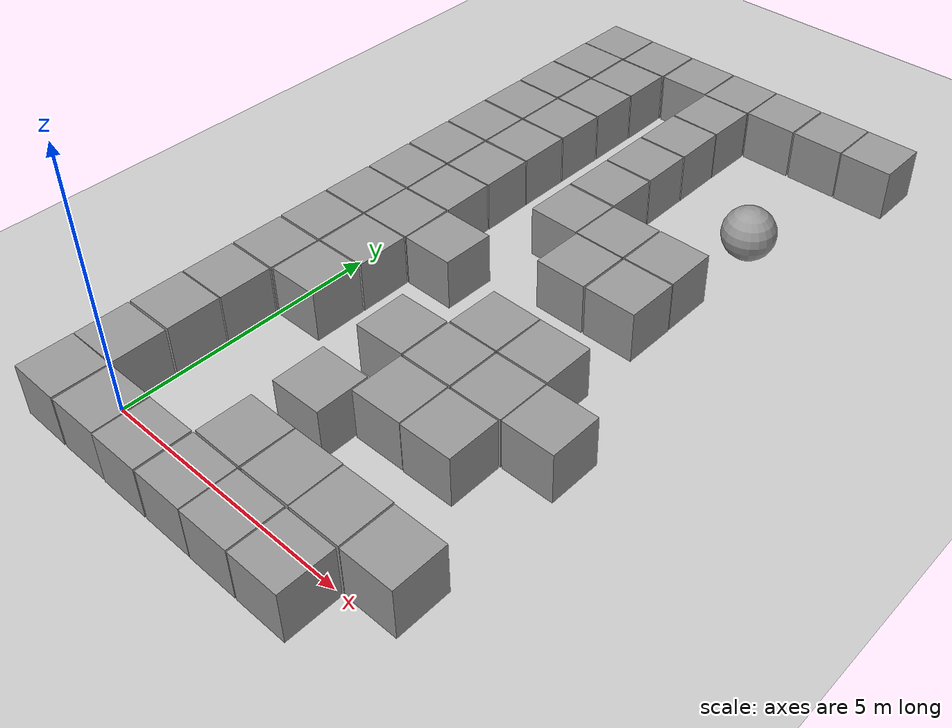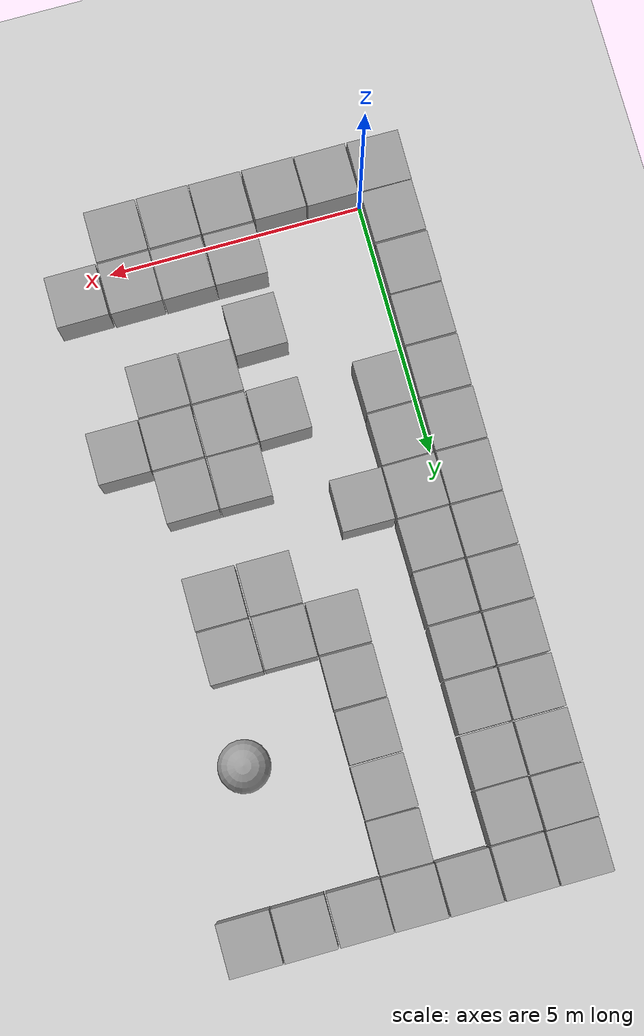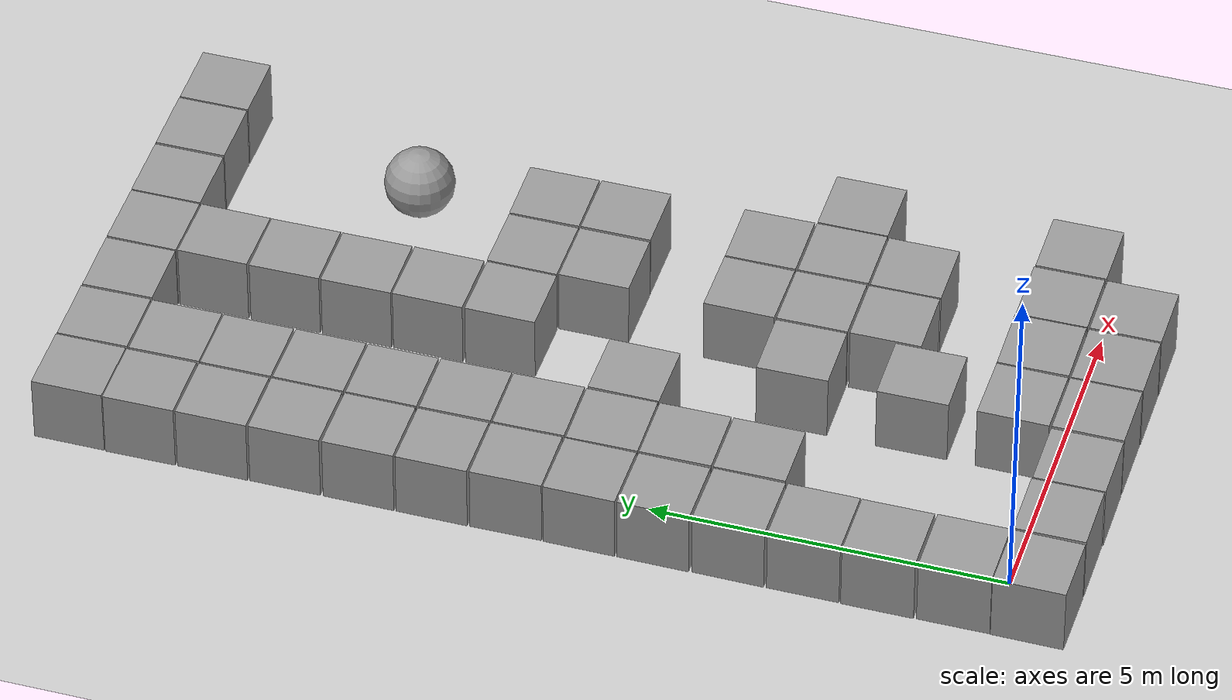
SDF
<sdf version="1.6">
 <world name="hub_mix">
  <include><uri>model://ground_plane</uri></include>
  <include><uri>model://sun</uri></include>
  <model name="unit_box_0">
   <pose>-0.5049 -0.4946 0.5 0 0 -0.00733</pose>
   <link name="link">
    <inertial>
     <mass>1</mass>
     <inertia>
      <ixx>0.166667</ixx>
      <ixy>0</ixy>
      <ixz>0</ixz>
      <iyy>0.166667</iyy>
      <iyz>0</iyz>
      <izz>0.166667</izz>
     </inertia>
    </inertial>
    <collision name="collision"><geometry><box><size>1 1 1</size></box></geometry></collision>
    <visual name="visual">
     <geometry><box><size>1 1 1</size></box></geometry>
     <material>
      <script><uri>file://media/materials/scripts/gazebo.material</uri><name>Gazebo/Grey</name></script>
     </material>
    </visual>
   </link>
  </model>
  <model name="unit_box_1">
   <pose>0.5329 -0.4959 0.5 0 0 0.00518</pose>
   <link name="link">
    <inertial>
     <mass>1</mass>
     <inertia>
      <ixx>0.166667</ixx>
      <ixy>0</ixy>
      <ixz>0</ixz>
      <iyy>0.166667</iyy>
      <iyz>0</iyz>
      <izz>0.166667</izz>
     </inertia>
    </inertial>
    <collision name="collision"><geometry><box><size>1 1 1</size></box></geometry></collision>
    <visual name="visual">
     <geometry><box><size>1 1 1</size></box></geometry>
     <material>
      <script><uri>file://media/materials/scripts/gazebo.material</uri><name>Gazebo/Grey</name></script>
     </material>
    </visual>
   </link>
  </model>
  <model name="unit_box_2">
   <pose>1.5576 -0.5018 0.5 0 0 0.00465</pose>
   <link name="link">
    <inertial>
     <mass>1</mass>
     <inertia>
      <ixx>0.166667</ixx>
      <ixy>0</ixy>
      <ixz>0</ixz>
      <iyy>0.166667</iyy>
      <iyz>0</iyz>
      <izz>0.166667</izz>
     </inertia>
    </inertial>
    <collision name="collision"><geometry><box><size>1 1 1</size></box></geometry></collision>
    <visual name="visual">
     <geometry><box><size>1 1 1</size></box></geometry>
     <material>
      <script><uri>file://media/materials/scripts/gazebo.material</uri><name>Gazebo/Grey</name></script>
     </material>
    </visual>
   </link>
  </model>
  <model name="unit_box_3">
   <pose>2.5956 -0.4980 0.5 0 0 0.00085</pose>
   <link name="link">
    <inertial>
     <mass>1</mass>
     <inertia>
      <ixx>0.166667</ixx>
      <ixy>0</ixy>
      <ixz>0</ixz>
      <iyy>0.166667</iyy>
      <iyz>0</iyz>
      <izz>0.166667</izz>
     </inertia>
    </inertial>
    <collision name="collision"><geometry><box><size>1 1 1</size></box></geometry></collision>
    <visual name="visual">
     <geometry><box><size>1 1 1</size></box></geometry>
     <material>
      <script><uri>file://media/materials/scripts/gazebo.material</uri><name>Gazebo/Grey</name></script>
     </material>
    </visual>
   </link>
  </model>
  <model name="unit_box_4">
   <pose>3.6187 -0.5011 0.5 0 0 0.00459</pose>
   <link name="link">
    <inertial>
     <mass>1</mass>
     <inertia>
      <ixx>0.166667</ixx>
      <ixy>0</ixy>
      <ixz>0</ixz>
      <iyy>0.166667</iyy>
      <iyz>0</iyz>
      <izz>0.166667</izz>
     </inertia>
    </inertial>
    <collision name="collision"><geometry><box><size>1 1 1</size></box></geometry></collision>
    <visual name="visual">
     <geometry><box><size>1 1 1</size></box></geometry>
     <material>
      <script><uri>file://media/materials/scripts/gazebo.material</uri><name>Gazebo/Grey</name></script>
     </material>
    </visual>
   </link>
  </model>
  <model name="unit_box_5">
   <pose>4.6491 -0.4996 0.5 0 0 0.00274</pose>
   <link name="link">
    <inertial>
     <mass>1</mass>
     <inertia>
      <ixx>0.166667</ixx>
      <ixy>0</ixy>
      <ixz>0</ixz>
      <iyy>0.166667</iyy>
      <iyz>0</iyz>
      <izz>0.166667</izz>
     </inertia>
    </inertial>
    <collision name="collision"><geometry><box><size>1 1 1</size></box></geometry></collision>
    <visual name="visual">
     <geometry><box><size>1 1 1</size></box></geometry>
     <material>
      <script><uri>file://media/materials/scripts/gazebo.material</uri><name>Gazebo/Grey</name></script>
     </material>
    </visual>
   </link>
  </model>
  <model name="unit_box_15">
   <pose>-0.4976 12.8890 0.5 0 0 -0.00064</pose>
   <link name="link">
    <inertial>
     <mass>1</mass>
     <inertia>
      <ixx>0.166667</ixx>
      <ixy>0</ixy>
      <ixz>0</ixz>
      <iyy>0.166667</iyy>
      <iyz>0</iyz>
      <izz>0.166667</izz>
     </inertia>
    </inertial>
    <collision name="collision"><geometry><box><size>1 1 1</size></box></geometry></collision>
    <visual name="visual">
     <geometry><box><size>1 1 1</size></box></geometry>
     <material>
      <script><uri>file://media/materials/scripts/gazebo.material</uri><name>Gazebo/Grey</name></script>
     </material>
    </visual>
   </link>
  </model>
  <model name="unit_box_16">
   <pose>0.5312 12.8853 0.5 0 0 0.00665</pose>
   <link name="link">
    <inertial>
     <mass>1</mass>
     <inertia>
      <ixx>0.166667</ixx>
      <ixy>0</ixy>
      <ixz>0</ixz>
      <iyy>0.166667</iyy>
      <iyz>0</iyz>
      <izz>0.166667</izz>
     </inertia>
    </inertial>
    <collision name="collision"><geometry><box><size>1 1 1</size></box></geometry></collision>
    <visual name="visual">
     <geometry><box><size>1 1 1</size></box></geometry>
     <material>
      <script><uri>file://media/materials/scripts/gazebo.material</uri><name>Gazebo/Grey</name></script>
     </material>
    </visual>
   </link>
  </model>
  <model name="unit_box_17">
   <pose>1.5647 12.8871 0.5 0 0 0.00662</pose>
   <link name="link">
    <inertial>
     <mass>1</mass>
     <inertia>
      <ixx>0.166667</ixx>
      <ixy>0</ixy>
      <ixz>0</ixz>
      <iyy>0.166667</iyy>
      <iyz>0</iyz>
      <izz>0.166667</izz>
     </inertia>
    </inertial>
    <collision name="collision"><geometry><box><size>1 1 1</size></box></geometry></collision>
    <visual name="visual">
     <geometry><box><size>1 1 1</size></box></geometry>
     <material>
      <script><uri>file://media/materials/scripts/gazebo.material</uri><name>Gazebo/Grey</name></script>
     </material>
    </visual>
   </link>
  </model>
  <model name="unit_box_18">
   <pose>2.5924 12.8876 0.5 0 0 -0.00482</pose>
   <link name="link">
    <inertial>
     <mass>1</mass>
     <inertia>
      <ixx>0.166667</ixx>
      <ixy>0</ixy>
      <ixz>0</ixz>
      <iyy>0.166667</iyy>
      <iyz>0</iyz>
      <izz>0.166667</izz>
     </inertia>
    </inertial>
    <collision name="collision"><geometry><box><size>1 1 1</size></box></geometry></collision>
    <visual name="visual">
     <geometry><box><size>1 1 1</size></box></geometry>
     <material>
      <script><uri>file://media/materials/scripts/gazebo.material</uri><name>Gazebo/Grey</name></script>
     </material>
    </visual>
   </link>
  </model>
  <model name="unit_box_19">
   <pose>3.6150 12.8890 0.5 0 0 -0.00102</pose>
   <link name="link">
    <inertial>
     <mass>1</mass>
     <inertia>
      <ixx>0.166667</ixx>
      <ixy>0</ixy>
      <ixz>0</ixz>
      <iyy>0.166667</iyy>
      <iyz>0</iyz>
      <izz>0.166667</izz>
     </inertia>
    </inertial>
    <collision name="collision"><geometry><box><size>1 1 1</size></box></geometry></collision>
    <visual name="visual">
     <geometry><box><size>1 1 1</size></box></geometry>
     <material>
      <script><uri>file://media/materials/scripts/gazebo.material</uri><name>Gazebo/Grey</name></script>
     </material>
    </visual>
   </link>
  </model>
  <model name="unit_box_20">
   <pose>4.6498 12.8898 0.5 0 0 0.00102</pose>
   <link name="link">
    <inertial>
     <mass>1</mass>
     <inertia>
      <ixx>0.166667</ixx>
      <ixy>0</ixy>
      <ixz>0</ixz>
      <iyy>0.166667</iyy>
      <iyz>0</iyz>
      <izz>0.166667</izz>
     </inertia>
    </inertial>
    <collision name="collision"><geometry><box><size>1 1 1</size></box></geometry></collision>
    <visual name="visual">
     <geometry><box><size>1 1 1</size></box></geometry>
     <material>
      <script><uri>file://media/materials/scripts/gazebo.material</uri><name>Gazebo/Grey</name></script>
     </material>
    </visual>
   </link>
  </model>
  <model name="unit_box_21">
   <pose>5.6755 12.8867 0.5 0 0 0.00124</pose>
   <link name="link">
    <inertial>
     <mass>1</mass>
     <inertia>
      <ixx>0.166667</ixx>
      <ixy>0</ixy>
      <ixz>0</ixz>
      <iyy>0.166667</iyy>
      <iyz>0</iyz>
      <izz>0.166667</izz>
     </inertia>
    </inertial>
    <collision name="collision"><geometry><box><size>1 1 1</size></box></geometry></collision>
    <visual name="visual">
     <geometry><box><size>1 1 1</size></box></geometry>
     <material>
      <script><uri>file://media/materials/scripts/gazebo.material</uri><name>Gazebo/Grey</name></script>
     </material>
    </visual>
   </link>
  </model>
  <model name="unit_box_30">
   <pose>-0.4976 0.5193 0.5 0 0 0.00308</pose>
   <link name="link">
    <inertial>
     <mass>1</mass>
     <inertia>
      <ixx>0.166667</ixx>
      <ixy>0</ixy>
      <ixz>0</ixz>
      <iyy>0.166667</iyy>
      <iyz>0</iyz>
      <izz>0.166667</izz>
     </inertia>
    </inertial>
    <collision name="collision"><geometry><box><size>1 1 1</size></box></geometry></collision>
    <visual name="visual">
     <geometry><box><size>1 1 1</size></box></geometry>
     <material>
      <script><uri>file://media/materials/scripts/gazebo.material</uri><name>Gazebo/Grey</name></script>
     </material>
    </visual>
   </link>
  </model>
  <model name="unit_box_31">
   <pose>-0.5059 1.5576 0.5 0 0 0.00122</pose>
   <link name="link">
    <inertial>
     <mass>1</mass>
     <inertia>
      <ixx>0.166667</ixx>
      <ixy>0</ixy>
      <ixz>0</ixz>
      <iyy>0.166667</iyy>
      <iyz>0</iyz>
      <izz>0.166667</izz>
     </inertia>
    </inertial>
    <collision name="collision"><geometry><box><size>1 1 1</size></box></geometry></collision>
    <visual name="visual">
     <geometry><box><size>1 1 1</size></box></geometry>
     <material>
      <script><uri>file://media/materials/scripts/gazebo.material</uri><name>Gazebo/Grey</name></script>
     </material>
    </visual>
   </link>
  </model>
  <model name="unit_box_32">
   <pose>-0.4989 2.5807 0.5 0 0 -0.00042</pose>
   <link name="link">
    <inertial>
     <mass>1</mass>
     <inertia>
      <ixx>0.166667</ixx>
      <ixy>0</ixy>
      <ixz>0</ixz>
      <iyy>0.166667</iyy>
      <iyz>0</iyz>
      <izz>0.166667</izz>
     </inertia>
    </inertial>
    <collision name="collision"><geometry><box><size>1 1 1</size></box></geometry></collision>
    <visual name="visual">
     <geometry><box><size>1 1 1</size></box></geometry>
     <material>
      <script><uri>file://media/materials/scripts/gazebo.material</uri><name>Gazebo/Grey</name></script>
     </material>
    </visual>
   </link>
  </model>
  <model name="unit_box_33">
   <pose>-0.4983 3.6144 0.5 0 0 -0.00793</pose>
   <link name="link">
    <inertial>
     <mass>1</mass>
     <inertia>
      <ixx>0.166667</ixx>
      <ixy>0</ixy>
      <ixz>0</ixz>
      <iyy>0.166667</iyy>
      <iyz>0</iyz>
      <izz>0.166667</izz>
     </inertia>
    </inertial>
    <collision name="collision"><geometry><box><size>1 1 1</size></box></geometry></collision>
    <visual name="visual">
     <geometry><box><size>1 1 1</size></box></geometry>
     <material>
      <script><uri>file://media/materials/scripts/gazebo.material</uri><name>Gazebo/Grey</name></script>
     </material>
    </visual>
   </link>
  </model>
  <model name="unit_box_34">
   <pose>-0.5036 4.6518 0.5 0 0 -0.00616</pose>
   <link name="link">
    <inertial>
     <mass>1</mass>
     <inertia>
      <ixx>0.166667</ixx>
      <ixy>0</ixy>
      <ixz>0</ixz>
      <iyy>0.166667</iyy>
      <iyz>0</iyz>
      <izz>0.166667</izz>
     </inertia>
    </inertial>
    <collision name="collision"><geometry><box><size>1 1 1</size></box></geometry></collision>
    <visual name="visual">
     <geometry><box><size>1 1 1</size></box></geometry>
     <material>
      <script><uri>file://media/materials/scripts/gazebo.material</uri><name>Gazebo/Grey</name></script>
     </material>
    </visual>
   </link>
  </model>
  <model name="unit_box_35">
   <pose>-0.4998 5.6816 0.5 0 0 -0.00584</pose>
   <link name="link">
    <inertial>
     <mass>1</mass>
     <inertia>
      <ixx>0.166667</ixx>
      <ixy>0</ixy>
      <ixz>0</ixz>
      <iyy>0.166667</iyy>
      <iyz>0</iyz>
      <izz>0.166667</izz>
     </inertia>
    </inertial>
    <collision name="collision"><geometry><box><size>1 1 1</size></box></geometry></collision>
    <visual name="visual">
     <geometry><box><size>1 1 1</size></box></geometry>
     <material>
      <script><uri>file://media/materials/scripts/gazebo.material</uri><name>Gazebo/Grey</name></script>
     </material>
    </visual>
   </link>
  </model>
  <model name="unit_box_36">
   <pose>-0.4963 6.7106 0.5 0 0 0.00936</pose>
   <link name="link">
    <inertial>
     <mass>1</mass>
     <inertia>
      <ixx>0.166667</ixx>
      <ixy>0</ixy>
      <ixz>0</ixz>
      <iyy>0.166667</iyy>
      <iyz>0</iyz>
      <izz>0.166667</izz>
     </inertia>
    </inertial>
    <collision name="collision"><geometry><box><size>1 1 1</size></box></geometry></collision>
    <visual name="visual">
     <geometry><box><size>1 1 1</size></box></geometry>
     <material>
      <script><uri>file://media/materials/scripts/gazebo.material</uri><name>Gazebo/Grey</name></script>
     </material>
    </visual>
   </link>
  </model>
  <model name="unit_box_37">
   <pose>-0.5035 7.7418 0.5 0 0 -0.00288</pose>
   <link name="link">
    <inertial>
     <mass>1</mass>
     <inertia>
      <ixx>0.166667</ixx>
      <ixy>0</ixy>
      <ixz>0</ixz>
      <iyy>0.166667</iyy>
      <iyz>0</iyz>
      <izz>0.166667</izz>
     </inertia>
    </inertial>
    <collision name="collision"><geometry><box><size>1 1 1</size></box></geometry></collision>
    <visual name="visual">
     <geometry><box><size>1 1 1</size></box></geometry>
     <material>
      <script><uri>file://media/materials/scripts/gazebo.material</uri><name>Gazebo/Grey</name></script>
     </material>
    </visual>
   </link>
  </model>
  <model name="unit_box_38">
   <pose>-0.5027 8.7737 0.5 0 0 -0.00153</pose>
   <link name="link">
    <inertial>
     <mass>1</mass>
     <inertia>
      <ixx>0.166667</ixx>
      <ixy>0</ixy>
      <ixz>0</ixz>
      <iyy>0.166667</iyy>
      <iyz>0</iyz>
      <izz>0.166667</izz>
     </inertia>
    </inertial>
    <collision name="collision"><geometry><box><size>1 1 1</size></box></geometry></collision>
    <visual name="visual">
     <geometry><box><size>1 1 1</size></box></geometry>
     <material>
      <script><uri>file://media/materials/scripts/gazebo.material</uri><name>Gazebo/Grey</name></script>
     </material>
    </visual>
   </link>
  </model>
  <model name="unit_box_39">
   <pose>-0.5013 9.8108 0.5 0 0 -0.00366</pose>
   <link name="link">
    <inertial>
     <mass>1</mass>
     <inertia>
      <ixx>0.166667</ixx>
      <ixy>0</ixy>
      <ixz>0</ixz>
      <iyy>0.166667</iyy>
      <iyz>0</iyz>
      <izz>0.166667</izz>
     </inertia>
    </inertial>
    <collision name="collision"><geometry><box><size>1 1 1</size></box></geometry></collision>
    <visual name="visual">
     <geometry><box><size>1 1 1</size></box></geometry>
     <material>
      <script><uri>file://media/materials/scripts/gazebo.material</uri><name>Gazebo/Grey</name></script>
     </material>
    </visual>
   </link>
  </model>
  <model name="unit_box_40">
   <pose>-0.5053 10.8412 0.5 0 0 -0.00137</pose>
   <link name="link">
    <inertial>
     <mass>1</mass>
     <inertia>
      <ixx>0.166667</ixx>
      <ixy>0</ixy>
      <ixz>0</ixz>
      <iyy>0.166667</iyy>
      <iyz>0</iyz>
      <izz>0.166667</izz>
     </inertia>
    </inertial>
    <collision name="collision"><geometry><box><size>1 1 1</size></box></geometry></collision>
    <visual name="visual">
     <geometry><box><size>1 1 1</size></box></geometry>
     <material>
      <script><uri>file://media/materials/scripts/gazebo.material</uri><name>Gazebo/Grey</name></script>
     </material>
    </visual>
   </link>
  </model>
  <model name="unit_box_41">
   <pose>-0.5057 11.8731 0.5 0 0 0.00473</pose>
   <link name="link">
    <inertial>
     <mass>1</mass>
     <inertia>
      <ixx>0.166667</ixx>
      <ixy>0</ixy>
      <ixz>0</ixz>
      <iyy>0.166667</iyy>
      <iyz>0</iyz>
      <izz>0.166667</izz>
     </inertia>
    </inertial>
    <collision name="collision"><geometry><box><size>1 1 1</size></box></geometry></collision>
    <visual name="visual">
     <geometry><box><size>1 1 1</size></box></geometry>
     <material>
      <script><uri>file://media/materials/scripts/gazebo.material</uri><name>Gazebo/Grey</name></script>
     </material>
    </visual>
   </link>
  </model>
  <model name="unit_box_54">
   <pose>2.5939 0.5324 0.5 0 0 -0.00897</pose>
   <link name="link">
    <inertial>
     <mass>1</mass>
     <inertia>
      <ixx>0.166667</ixx>
      <ixy>0</ixy>
      <ixz>0</ixz>
      <iyy>0.166667</iyy>
      <iyz>0</iyz>
      <izz>0.166667</izz>
     </inertia>
    </inertial>
    <collision name="collision"><geometry><box><size>1 1 1</size></box></geometry></collision>
    <visual name="visual">
     <geometry><box><size>1 1 1</size></box></geometry>
     <material>
      <script><uri>file://media/materials/scripts/gazebo.material</uri><name>Gazebo/Grey</name></script>
     </material>
    </visual>
   </link>
  </model>
  <model name="unit_box_55">
   <pose>3.6250 0.5344 0.5 0 0 0.01027</pose>
   <link name="link">
    <inertial>
     <mass>1</mass>
     <inertia>
      <ixx>0.166667</ixx>
      <ixy>0</ixy>
      <ixz>0</ixz>
      <iyy>0.166667</iyy>
      <iyz>0</iyz>
      <izz>0.166667</izz>
     </inertia>
    </inertial>
    <collision name="collision"><geometry><box><size>1 1 1</size></box></geometry></collision>
    <visual name="visual">
     <geometry><box><size>1 1 1</size></box></geometry>
     <material>
      <script><uri>file://media/materials/scripts/gazebo.material</uri><name>Gazebo/Grey</name></script>
     </material>
    </visual>
   </link>
  </model>
  <model name="unit_box_56">
   <pose>4.6451 0.5350 0.5 0 0 0.00585</pose>
   <link name="link">
    <inertial>
     <mass>1</mass>
     <inertia>
      <ixx>0.166667</ixx>
      <ixy>0</ixy>
      <ixz>0</ixz>
      <iyy>0.166667</iyy>
      <iyz>0</iyz>
      <izz>0.166667</izz>
     </inertia>
    </inertial>
    <collision name="collision"><geometry><box><size>1 1 1</size></box></geometry></collision>
    <visual name="visual">
     <geometry><box><size>1 1 1</size></box></geometry>
     <material>
      <script><uri>file://media/materials/scripts/gazebo.material</uri><name>Gazebo/Grey</name></script>
     </material>
    </visual>
   </link>
  </model>
  <model name="unit_box_57">
   <pose>5.6771 0.5250 0.5 0 0 0.00370</pose>
   <link name="link">
    <inertial>
     <mass>1</mass>
     <inertia>
      <ixx>0.166667</ixx>
      <ixy>0</ixy>
      <ixz>0</ixz>
      <iyy>0.166667</iyy>
      <iyz>0</iyz>
      <izz>0.166667</izz>
     </inertia>
    </inertial>
    <collision name="collision"><geometry><box><size>1 1 1</size></box></geometry></collision>
    <visual name="visual">
     <geometry><box><size>1 1 1</size></box></geometry>
     <material>
      <script><uri>file://media/materials/scripts/gazebo.material</uri><name>Gazebo/Grey</name></script>
     </material>
    </visual>
   </link>
  </model>
  <model name="unit_box_63">
   <pose>2.5932 1.9353 0.5 0 0 0.00752</pose>
   <link name="link">
    <inertial>
     <mass>1</mass>
     <inertia>
      <ixx>0.166667</ixx>
      <ixy>0</ixy>
      <ixz>0</ixz>
      <iyy>0.166667</iyy>
      <iyz>0</iyz>
      <izz>0.166667</izz>
     </inertia>
    </inertial>
    <collision name="collision"><geometry><box><size>1 1 1</size></box></geometry></collision>
    <visual name="visual">
     <geometry><box><size>1 1 1</size></box></geometry>
     <material>
      <script><uri>file://media/materials/scripts/gazebo.material</uri><name>Gazebo/Grey</name></script>
     </material>
    </visual>
   </link>
  </model>
  <model name="unit_box_64">
   <pose>3.6215 2.5927 0.5 0 0 0.00748</pose>
   <link name="link">
    <inertial>
     <mass>1</mass>
     <inertia>
      <ixx>0.166667</ixx>
      <ixy>0</ixy>
      <ixz>0</ixz>
      <iyy>0.166667</iyy>
      <iyz>0</iyz>
      <izz>0.166667</izz>
     </inertia>
    </inertial>
    <collision name="collision"><geometry><box><size>1 1 1</size></box></geometry></collision>
    <visual name="visual">
     <geometry><box><size>1 1 1</size></box></geometry>
     <material>
      <script><uri>file://media/materials/scripts/gazebo.material</uri><name>Gazebo/Grey</name></script>
     </material>
    </visual>
   </link>
  </model>
  <model name="unit_box_65">
   <pose>4.6457 2.5880 0.5 0 0 0.00490</pose>
   <link name="link">
    <inertial>
     <mass>1</mass>
     <inertia>
      <ixx>0.166667</ixx>
      <ixy>0</ixy>
      <ixz>0</ixz>
      <iyy>0.166667</iyy>
      <iyz>0</iyz>
      <izz>0.166667</izz>
     </inertia>
    </inertial>
    <collision name="collision"><geometry><box><size>1 1 1</size></box></geometry></collision>
    <visual name="visual">
     <geometry><box><size>1 1 1</size></box></geometry>
     <material>
      <script><uri>file://media/materials/scripts/gazebo.material</uri><name>Gazebo/Grey</name></script>
     </material>
    </visual>
   </link>
  </model>
  <model name="unit_box_69">
   <pose>0.5335 3.6242 0.5 0 0 0.00332</pose>
   <link name="link">
    <inertial>
     <mass>1</mass>
     <inertia>
      <ixx>0.166667</ixx>
      <ixy>0</ixy>
      <ixz>0</ixz>
      <iyy>0.166667</iyy>
      <iyz>0</iyz>
      <izz>0.166667</izz>
     </inertia>
    </inertial>
    <collision name="collision"><geometry><box><size>1 1 1</size></box></geometry></collision>
    <visual name="visual">
     <geometry><box><size>1 1 1</size></box></geometry>
     <material>
      <script><uri>file://media/materials/scripts/gazebo.material</uri><name>Gazebo/Grey</name></script>
     </material>
    </visual>
   </link>
  </model>
  <model name="unit_box_70">
   <pose>2.5895 3.6172 0.5 0 0 0.01014</pose>
   <link name="link">
    <inertial>
     <mass>1</mass>
     <inertia>
      <ixx>0.166667</ixx>
      <ixy>0</ixy>
      <ixz>0</ixz>
      <iyy>0.166667</iyy>
      <iyz>0</iyz>
      <izz>0.166667</izz>
     </inertia>
    </inertial>
    <collision name="collision"><geometry><box><size>1 1 1</size></box></geometry></collision>
    <visual name="visual">
     <geometry><box><size>1 1 1</size></box></geometry>
     <material>
      <script><uri>file://media/materials/scripts/gazebo.material</uri><name>Gazebo/Grey</name></script>
     </material>
    </visual>
   </link>
  </model>
  <model name="unit_box_71">
   <pose>3.6225 3.6258 0.5 0 0 0.00336</pose>
   <link name="link">
    <inertial>
     <mass>1</mass>
     <inertia>
      <ixx>0.166667</ixx>
      <ixy>0</ixy>
      <ixz>0</ixz>
      <iyy>0.166667</iyy>
      <iyz>0</iyz>
      <izz>0.166667</izz>
     </inertia>
    </inertial>
    <collision name="collision"><geometry><box><size>1 1 1</size></box></geometry></collision>
    <visual name="visual">
     <geometry><box><size>1 1 1</size></box></geometry>
     <material>
      <script><uri>file://media/materials/scripts/gazebo.material</uri><name>Gazebo/Grey</name></script>
     </material>
    </visual>
   </link>
  </model>
  <model name="unit_box_72">
   <pose>4.6543 3.6168 0.5 0 0 0.00464</pose>
   <link name="link">
    <inertial>
     <mass>1</mass>
     <inertia>
      <ixx>0.166667</ixx>
      <ixy>0</ixy>
      <ixz>0</ixz>
      <iyy>0.166667</iyy>
      <iyz>0</iyz>
      <izz>0.166667</izz>
     </inertia>
    </inertial>
    <collision name="collision"><geometry><box><size>1 1 1</size></box></geometry></collision>
    <visual name="visual">
     <geometry><box><size>1 1 1</size></box></geometry>
     <material>
      <script><uri>file://media/materials/scripts/gazebo.material</uri><name>Gazebo/Grey</name></script>
     </material>
    </visual>
   </link>
  </model>
  <model name="unit_box_73">
   <pose>5.6752 3.6179 0.5 0 0 -0.00108</pose>
   <link name="link">
    <inertial>
     <mass>1</mass>
     <inertia>
      <ixx>0.166667</ixx>
      <ixy>0</ixy>
      <ixz>0</ixz>
      <iyy>0.166667</iyy>
      <iyz>0</iyz>
      <izz>0.166667</izz>
     </inertia>
    </inertial>
    <collision name="collision"><geometry><box><size>1 1 1</size></box></geometry></collision>
    <visual name="visual">
     <geometry><box><size>1 1 1</size></box></geometry>
     <material>
      <script><uri>file://media/materials/scripts/gazebo.material</uri><name>Gazebo/Grey</name></script>
     </material>
    </visual>
   </link>
  </model>
  <model name="unit_box_76">
   <pose>0.5340 4.6552 0.5 0 0 0.00589</pose>
   <link name="link">
    <inertial>
     <mass>1</mass>
     <inertia>
      <ixx>0.166667</ixx>
      <ixy>0</ixy>
      <ixz>0</ixz>
      <iyy>0.166667</iyy>
      <iyz>0</iyz>
      <izz>0.166667</izz>
     </inertia>
    </inertial>
    <collision name="collision"><geometry><box><size>1 1 1</size></box></geometry></collision>
    <visual name="visual">
     <geometry><box><size>1 1 1</size></box></geometry>
     <material>
      <script><uri>file://media/materials/scripts/gazebo.material</uri><name>Gazebo/Grey</name></script>
     </material>
    </visual>
   </link>
  </model>
  <model name="unit_box_77">
   <pose>3.6202 4.6520 0.5 0 0 -0.00932</pose>
   <link name="link">
    <inertial>
     <mass>1</mass>
     <inertia>
      <ixx>0.166667</ixx>
      <ixy>0</ixy>
      <ixz>0</ixz>
      <iyy>0.166667</iyy>
      <iyz>0</iyz>
      <izz>0.166667</izz>
     </inertia>
    </inertial>
    <collision name="collision"><geometry><box><size>1 1 1</size></box></geometry></collision>
    <visual name="visual">
     <geometry><box><size>1 1 1</size></box></geometry>
     <material>
      <script><uri>file://media/materials/scripts/gazebo.material</uri><name>Gazebo/Grey</name></script>
     </material>
    </visual>
   </link>
  </model>
  <model name="unit_box_78">
   <pose>4.6485 4.6489 0.5 0 0 0.00495</pose>
   <link name="link">
    <inertial>
     <mass>1</mass>
     <inertia>
      <ixx>0.166667</ixx>
      <ixy>0</ixy>
      <ixz>0</ixz>
      <iyy>0.166667</iyy>
      <iyz>0</iyz>
      <izz>0.166667</izz>
     </inertia>
    </inertial>
    <collision name="collision"><geometry><box><size>1 1 1</size></box></geometry></collision>
    <visual name="visual">
     <geometry><box><size>1 1 1</size></box></geometry>
     <material>
      <script><uri>file://media/materials/scripts/gazebo.material</uri><name>Gazebo/Grey</name></script>
     </material>
    </visual>
   </link>
  </model>
  <model name="unit_box_80">
   <pose>0.5264 5.6797 0.5 0 0 0.01034</pose>
   <link name="link">
    <inertial>
     <mass>1</mass>
     <inertia>
      <ixx>0.166667</ixx>
      <ixy>0</ixy>
      <ixz>0</ixz>
      <iyy>0.166667</iyy>
      <iyz>0</iyz>
      <izz>0.166667</izz>
     </inertia>
    </inertial>
    <collision name="collision"><geometry><box><size>1 1 1</size></box></geometry></collision>
    <visual name="visual">
     <geometry><box><size>1 1 1</size></box></geometry>
     <material>
      <script><uri>file://media/materials/scripts/gazebo.material</uri><name>Gazebo/Grey</name></script>
     </material>
    </visual>
   </link>
  </model>
  <model name="unit_box_81">
   <pose>1.5579 5.6748 0.5 0 0 -0.01011</pose>
   <link name="link">
    <inertial>
     <mass>1</mass>
     <inertia>
      <ixx>0.166667</ixx>
      <ixy>0</ixy>
      <ixz>0</ixz>
      <iyy>0.166667</iyy>
      <iyz>0</iyz>
      <izz>0.166667</izz>
     </inertia>
    </inertial>
    <collision name="collision"><geometry><box><size>1 1 1</size></box></geometry></collision>
    <visual name="visual">
     <geometry><box><size>1 1 1</size></box></geometry>
     <material>
      <script><uri>file://media/materials/scripts/gazebo.material</uri><name>Gazebo/Grey</name></script>
     </material>
    </visual>
   </link>
  </model>
  <model name="unit_box_82">
   <pose>0.5329 6.7087 0.5 0 0 0.01020</pose>
   <link name="link">
    <inertial>
     <mass>1</mass>
     <inertia>
      <ixx>0.166667</ixx>
      <ixy>0</ixy>
      <ixz>0</ixz>
      <iyy>0.166667</iyy>
      <iyz>0</iyz>
      <izz>0.166667</izz>
     </inertia>
    </inertial>
    <collision name="collision"><geometry><box><size>1 1 1</size></box></geometry></collision>
    <visual name="visual">
     <geometry><box><size>1 1 1</size></box></geometry>
     <material>
      <script><uri>file://media/materials/scripts/gazebo.material</uri><name>Gazebo/Grey</name></script>
     </material>
    </visual>
   </link>
  </model>
  <model name="unit_box_83">
   <pose>3.6170 6.7157 0.5 0 0 -0.00393</pose>
   <link name="link">
    <inertial>
     <mass>1</mass>
     <inertia>
      <ixx>0.166667</ixx>
      <ixy>0</ixy>
      <ixz>0</ixz>
      <iyy>0.166667</iyy>
      <iyz>0</iyz>
      <izz>0.166667</izz>
     </inertia>
    </inertial>
    <collision name="collision"><geometry><box><size>1 1 1</size></box></geometry></collision>
    <visual name="visual">
     <geometry><box><size>1 1 1</size></box></geometry>
     <material>
      <script><uri>file://media/materials/scripts/gazebo.material</uri><name>Gazebo/Grey</name></script>
     </material>
    </visual>
   </link>
  </model>
  <model name="unit_box_84">
   <pose>4.6557 6.7152 0.5 0 0 -0.00209</pose>
   <link name="link">
    <inertial>
     <mass>1</mass>
     <inertia>
      <ixx>0.166667</ixx>
      <ixy>0</ixy>
      <ixz>0</ixz>
      <iyy>0.166667</iyy>
      <iyz>0</iyz>
      <izz>0.166667</izz>
     </inertia>
    </inertial>
    <collision name="collision"><geometry><box><size>1 1 1</size></box></geometry></collision>
    <visual name="visual">
     <geometry><box><size>1 1 1</size></box></geometry>
     <material>
      <script><uri>file://media/materials/scripts/gazebo.material</uri><name>Gazebo/Grey</name></script>
     </material>
    </visual>
   </link>
  </model>
  <model name="unit_box_86">
   <pose>0.5316 7.7357 0.5 0 0 0.00709</pose>
   <link name="link">
    <inertial>
     <mass>1</mass>
     <inertia>
      <ixx>0.166667</ixx>
      <ixy>0</ixy>
      <ixz>0</ixz>
      <iyy>0.166667</iyy>
      <iyz>0</iyz>
      <izz>0.166667</izz>
     </inertia>
    </inertial>
    <collision name="collision"><geometry><box><size>1 1 1</size></box></geometry></collision>
    <visual name="visual">
     <geometry><box><size>1 1 1</size></box></geometry>
     <material>
      <script><uri>file://media/materials/scripts/gazebo.material</uri><name>Gazebo/Grey</name></script>
     </material>
    </visual>
   </link>
  </model>
  <model name="unit_box_87">
   <pose>2.5881 7.7378 0.5 0 0 -0.00890</pose>
   <link name="link">
    <inertial>
     <mass>1</mass>
     <inertia>
      <ixx>0.166667</ixx>
      <ixy>0</ixy>
      <ixz>0</ixz>
      <iyy>0.166667</iyy>
      <iyz>0</iyz>
      <izz>0.166667</izz>
     </inertia>
    </inertial>
    <collision name="collision"><geometry><box><size>1 1 1</size></box></geometry></collision>
    <visual name="visual">
     <geometry><box><size>1 1 1</size></box></geometry>
     <material>
      <script><uri>file://media/materials/scripts/gazebo.material</uri><name>Gazebo/Grey</name></script>
     </material>
    </visual>
   </link>
  </model>
  <model name="unit_box_88">
   <pose>3.6143 7.7394 0.5 0 0 -0.00768</pose>
   <link name="link">
    <inertial>
     <mass>1</mass>
     <inertia>
      <ixx>0.166667</ixx>
      <ixy>0</ixy>
      <ixz>0</ixz>
      <iyy>0.166667</iyy>
      <iyz>0</iyz>
      <izz>0.166667</izz>
     </inertia>
    </inertial>
    <collision name="collision"><geometry><box><size>1 1 1</size></box></geometry></collision>
    <visual name="visual">
     <geometry><box><size>1 1 1</size></box></geometry>
     <material>
      <script><uri>file://media/materials/scripts/gazebo.material</uri><name>Gazebo/Grey</name></script>
     </material>
    </visual>
   </link>
  </model>
  <model name="unit_box_89">
   <pose>4.6477 7.7429 0.5 0 0 0.00533</pose>
   <link name="link">
    <inertial>
     <mass>1</mass>
     <inertia>
      <ixx>0.166667</ixx>
      <ixy>0</ixy>
      <ixz>0</ixz>
      <iyy>0.166667</iyy>
      <iyz>0</iyz>
      <izz>0.166667</izz>
     </inertia>
    </inertial>
    <collision name="collision"><geometry><box><size>1 1 1</size></box></geometry></collision>
    <visual name="visual">
     <geometry><box><size>1 1 1</size></box></geometry>
     <material>
      <script><uri>file://media/materials/scripts/gazebo.material</uri><name>Gazebo/Grey</name></script>
     </material>
    </visual>
   </link>
  </model>
  <model name="unit_box_95">
   <pose>0.5252 8.7710 0.5 0 0 0.00058</pose>
   <link name="link">
    <inertial>
     <mass>1</mass>
     <inertia>
      <ixx>0.166667</ixx>
      <ixy>0</ixy>
      <ixz>0</ixz>
      <iyy>0.166667</iyy>
      <iyz>0</iyz>
      <izz>0.166667</izz>
     </inertia>
    </inertial>
    <collision name="collision"><geometry><box><size>1 1 1</size></box></geometry></collision>
    <visual name="visual">
     <geometry><box><size>1 1 1</size></box></geometry>
     <material>
      <script><uri>file://media/materials/scripts/gazebo.material</uri><name>Gazebo/Grey</name></script>
     </material>
    </visual>
   </link>
  </model>
  <model name="unit_box_96">
   <pose>2.5927 8.7744 0.5 0 0 -0.00698</pose>
   <link name="link">
    <inertial>
     <mass>1</mass>
     <inertia>
      <ixx>0.166667</ixx>
      <ixy>0</ixy>
      <ixz>0</ixz>
      <iyy>0.166667</iyy>
      <iyz>0</iyz>
      <izz>0.166667</izz>
     </inertia>
    </inertial>
    <collision name="collision"><geometry><box><size>1 1 1</size></box></geometry></collision>
    <visual name="visual">
     <geometry><box><size>1 1 1</size></box></geometry>
     <material>
      <script><uri>file://media/materials/scripts/gazebo.material</uri><name>Gazebo/Grey</name></script>
     </material>
    </visual>
   </link>
  </model>
  <model name="unit_box_98">
   <pose>0.5268 9.8031 0.5 0 0 -0.00311</pose>
   <link name="link">
    <inertial>
     <mass>1</mass>
     <inertia>
      <ixx>0.166667</ixx>
      <ixy>0</ixy>
      <ixz>0</ixz>
      <iyy>0.166667</iyy>
      <iyz>0</iyz>
      <izz>0.166667</izz>
     </inertia>
    </inertial>
    <collision name="collision"><geometry><box><size>1 1 1</size></box></geometry></collision>
    <visual name="visual">
     <geometry><box><size>1 1 1</size></box></geometry>
     <material>
      <script><uri>file://media/materials/scripts/gazebo.material</uri><name>Gazebo/Grey</name></script>
     </material>
    </visual>
   </link>
  </model>
  <model name="unit_box_99">
   <pose>2.5903 9.8046 0.5 0 0 0.00553</pose>
   <link name="link">
    <inertial>
     <mass>1</mass>
     <inertia>
      <ixx>0.166667</ixx>
      <ixy>0</ixy>
      <ixz>0</ixz>
      <iyy>0.166667</iyy>
      <iyz>0</iyz>
      <izz>0.166667</izz>
     </inertia>
    </inertial>
    <collision name="collision"><geometry><box><size>1 1 1</size></box></geometry></collision>
    <visual name="visual">
     <geometry><box><size>1 1 1</size></box></geometry>
     <material>
      <script><uri>file://media/materials/scripts/gazebo.material</uri><name>Gazebo/Grey</name></script>
     </material>
    </visual>
   </link>
  </model>
  <model name="unit_box_101">
   <pose>0.5270 10.8339 0.5 0 0 0.00175</pose>
   <link name="link">
    <inertial>
     <mass>1</mass>
     <inertia>
      <ixx>0.166667</ixx>
      <ixy>0</ixy>
      <ixz>0</ixz>
      <iyy>0.166667</iyy>
      <iyz>0</iyz>
      <izz>0.166667</izz>
     </inertia>
    </inertial>
    <collision name="collision"><geometry><box><size>1 1 1</size></box></geometry></collision>
    <visual name="visual">
     <geometry><box><size>1 1 1</size></box></geometry>
     <material>
      <script><uri>file://media/materials/scripts/gazebo.material</uri><name>Gazebo/Grey</name></script>
     </material>
    </visual>
   </link>
  </model>
  <model name="unit_box_102">
   <pose>2.5873 10.8358 0.5 0 0 0.00826</pose>
   <link name="link">
    <inertial>
     <mass>1</mass>
     <inertia>
      <ixx>0.166667</ixx>
      <ixy>0</ixy>
      <ixz>0</ixz>
      <iyy>0.166667</iyy>
      <iyz>0</iyz>
      <izz>0.166667</izz>
     </inertia>
    </inertial>
    <collision name="collision"><geometry><box><size>1 1 1</size></box></geometry></collision>
    <visual name="visual">
     <geometry><box><size>1 1 1</size></box></geometry>
     <material>
      <script><uri>file://media/materials/scripts/gazebo.material</uri><name>Gazebo/Grey</name></script>
     </material>
    </visual>
   </link>
  </model>
  <model name="unit_box_104">
   <pose>0.5288 11.8575 0.5 0 0 0.00660</pose>
   <link name="link">
    <inertial>
     <mass>1</mass>
     <inertia>
      <ixx>0.166667</ixx>
      <ixy>0</ixy>
      <ixz>0</ixz>
      <iyy>0.166667</iyy>
      <iyz>0</iyz>
      <izz>0.166667</izz>
     </inertia>
    </inertial>
    <collision name="collision"><geometry><box><size>1 1 1</size></box></geometry></collision>
    <visual name="visual">
     <geometry><box><size>1 1 1</size></box></geometry>
     <material>
      <script><uri>file://media/materials/scripts/gazebo.material</uri><name>Gazebo/Grey</name></script>
     </material>
    </visual>
   </link>
  </model>
  <model name="unit_box_105">
   <pose>2.5913 11.8629 0.5 0 0 -0.00889</pose>
   <link name="link">
    <inertial>
     <mass>1</mass>
     <inertia>
      <ixx>0.166667</ixx>
      <ixy>0</ixy>
      <ixz>0</ixz>
      <iyy>0.166667</iyy>
      <iyz>0</iyz>
      <izz>0.166667</izz>
     </inertia>
    </inertial>
    <collision name="collision"><geometry><box><size>1 1 1</size></box></geometry></collision>
    <visual name="visual">
     <geometry><box><size>1 1 1</size></box></geometry>
     <material>
      <script><uri>file://media/materials/scripts/gazebo.material</uri><name>Gazebo/Grey</name></script>
     </material>
    </visual>
   </link>
  </model>
  <model name="unit_sphere_0">
   <pose>4.9500 9.8000 0.5 0 0 0.00000</pose>
   <link name="link">
    <inertial>
     <mass>1</mass>
     <inertia>
      <ixx>0.166667</ixx>
      <ixy>0</ixy>
      <ixz>0</ixz>
      <iyy>0.166667</iyy>
      <iyz>0</iyz>
      <izz>0.166667</izz>
     </inertia>
    </inertial>
    <collision name="collision"><geometry><sphere><radius>0.5</radius></sphere></geometry></collision>
    <visual name="visual">
     <geometry><sphere><radius>0.5</radius></sphere></geometry>
     <material>
      <script><uri>file://media/materials/scripts/gazebo.material</uri><name>Gazebo/Grey</name></script>
     </material>
    </visual>
   </link>
  </model>
 </world>
</sdf>
